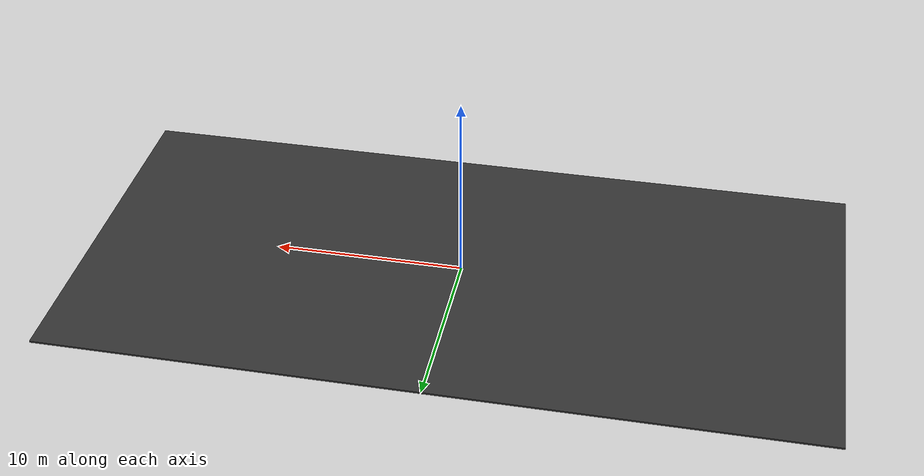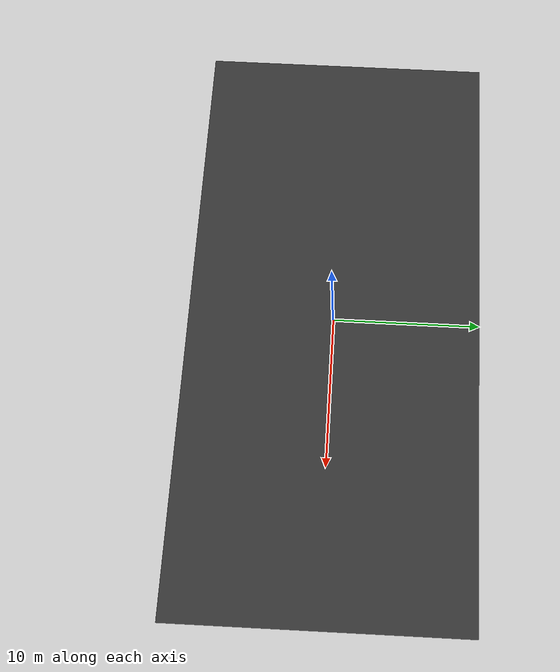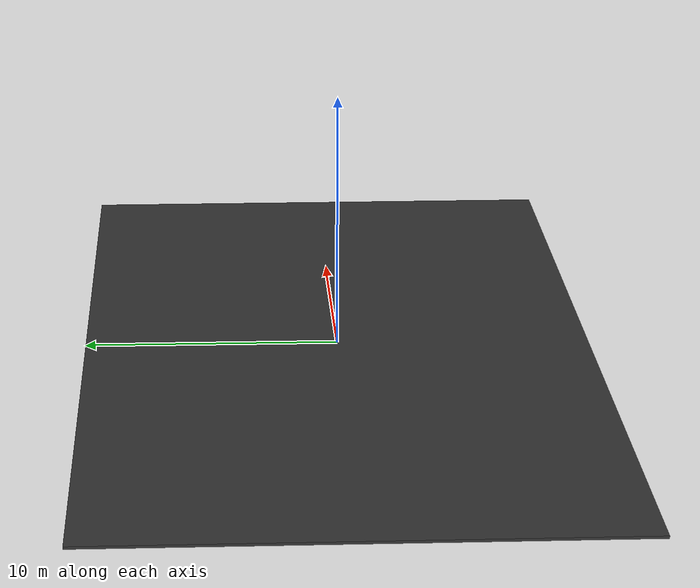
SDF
<?xml version="1.0"?>
<sdf version="1.9">
  <model name="road block">
    <static>true</static>
    <!-- ===== Road ===== -->
    <link name="road">
      <pose>0 0 0 0 0 0</pose>
      <collision name="coll">
        <geometry><box><size>40 20 0.1</size></box></geometry>
        <pose>0 0 0 0 0 0</pose>
      </collision>
      <visual name="vis">
        <geometry><box><size>40 20 0.1</size></box></geometry>
        <material>
          <ambient>0.2 0.2 0.2 1</ambient>
          <diffuse>0.2 0.2 0.2 1</diffuse>
        </material>
        <pose>0 0 -0.05 0 0 0</pose>
      </visual>
    </link>

  </model>
</sdf>
